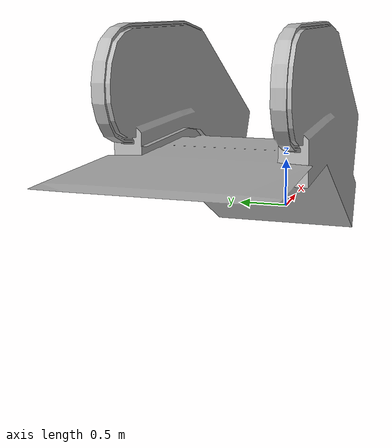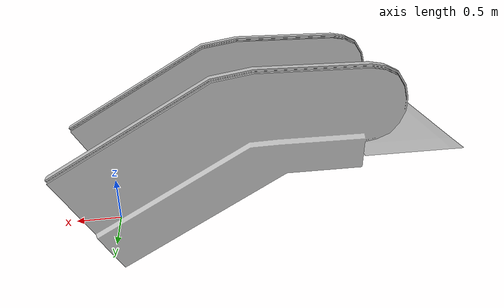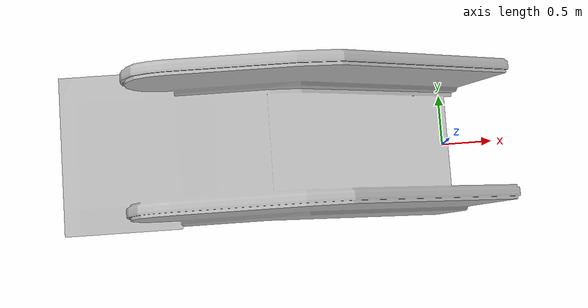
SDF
<sdf version="1.6">
    <model name="escalatorend">
        <static>true</static>
        <link name="body">
            <pose>0 0 0 0 0 0</pose>
            <visual name="visual">
                <geometry>
                    <mesh>
                        <uri>https://fuel.gazebosim.org/1.0/openrobotics/models/escalatorend/2/files/meshes/EscalatorEnd.obj</uri>
                    </mesh>
                </geometry>
            </visual>
            <collision name="collision">
                <geometry>
                    <mesh>
                        <uri>https://fuel.gazebosim.org/1.0/openrobotics/models/escalatorend/2/files/meshes/EscalatorEnd_Col.obj</uri>
                    </mesh>
                </geometry>
            </collision>
        </link>
    </model>
</sdf>
